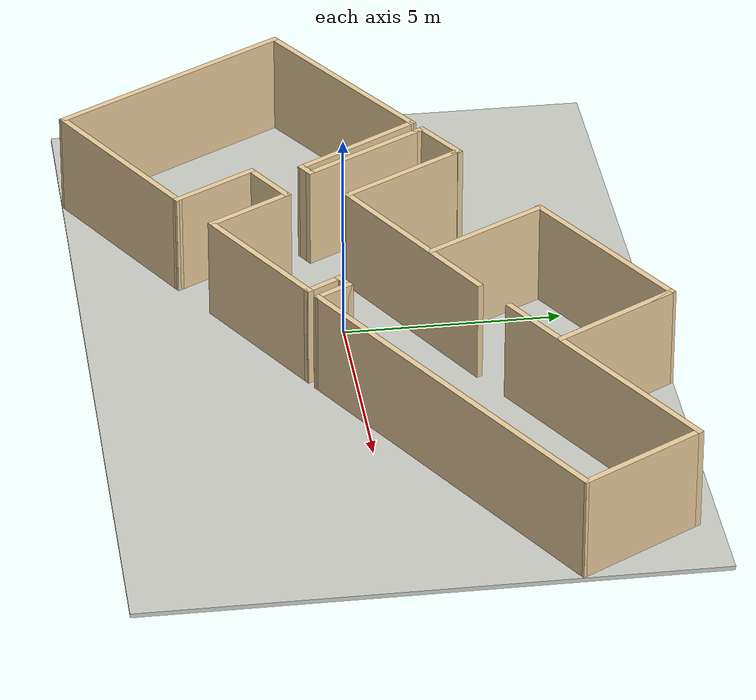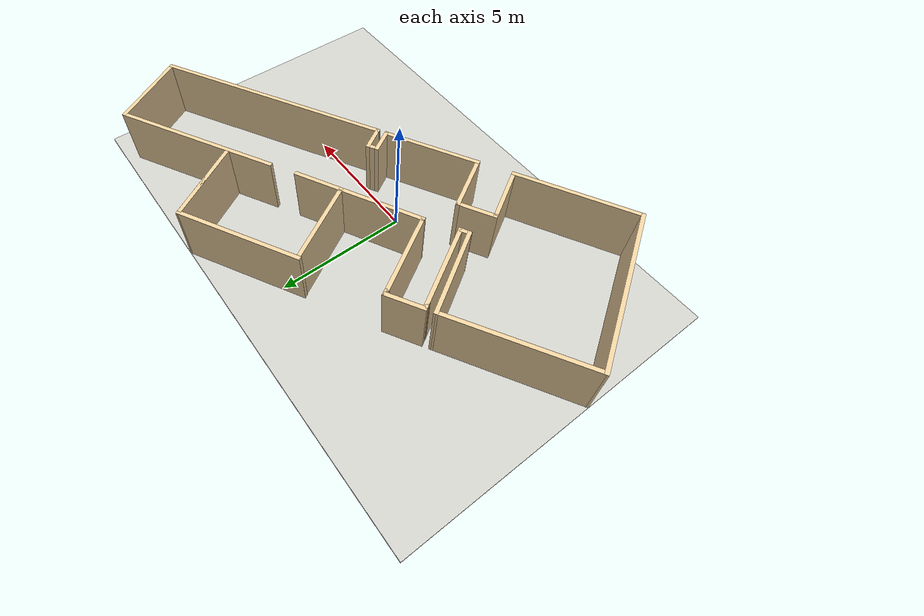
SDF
<?xml version='1.0'?>
<sdf version='1.7'>
  <model name='ignc_lab_new'>
    <pose>0.503554 0.562447 0 0 -0 0</pose>
    <link name='Floor_0'>
      <collision name='Floor_0_Collision'>
        <geometry>
          <box>
            <size>19.9217 12.8917 0.1</size>
          </box>
        </geometry>
        <pose>0 0 0.05 0 -0 0</pose>
      </collision>
      <visual name='Floor_0_Visual'>
        <pose>0 0 0.05 0 -0 0</pose>
        <geometry>
          <box>
            <size>19.9217 12.8917 0.1</size>
          </box>
        </geometry>
        <material>
          <script>
            <uri>file://media/materials/scripts/gazebo.material</uri>
            <name>Gazebo/CeilingTiled</name>
          </script>
          <ambient>1 1 1 1</ambient>
        </material>
        <meta>
          <layer>0</layer>
        </meta>
      </visual>
      <pose>0 -0 0 0 -0 0</pose>
    </link>
    <link name='Wall_100'>
      <collision name='Wall_100_Collision'>
        <geometry>
          <box>
            <size>6.36747 0.15 2.5</size>
          </box>
        </geometry>
        <pose>0 0 1.25 0 -0 0</pose>
      </collision>
      <visual name='Wall_100_Visual'>
        <pose>0 0 1.25 0 -0 0</pose>
        <geometry>
          <box>
            <size>6.36747 0.15 2.5</size>
          </box>
        </geometry>
        <material>
          <script>
            <uri>file://media/materials/scripts/gazebo.material</uri>
            <name>Gazebo/Grey</name>
          </script>
          <ambient>0.921569 0.807843 0.615686 1</ambient>
        </material>
        <meta>
          <layer>0</layer>
        </meta>
      </visual>
      <pose>-8.27025 -3.67023 0 0 -0 -1.03485</pose>
    </link>
    <link name='Wall_101'>
      <collision name='Wall_101_Collision'>
        <geometry>
          <box>
            <size>2.25 0.15 2.5</size>
          </box>
        </geometry>
        <pose>0 0 1.25 0 -0 0</pose>
      </collision>
      <visual name='Wall_101_Visual'>
        <pose>0 0 1.25 0 -0 0</pose>
        <geometry>
          <box>
            <size>2.25 0.15 2.5</size>
          </box>
        </geometry>
        <material>
          <script>
            <uri>file://media/materials/scripts/gazebo.material</uri>
            <name>Gazebo/Grey</name>
          </script>
          <ambient>0.921569 0.807843 0.615686 1</ambient>
        </material>
        <meta>
          <layer>0</layer>
        </meta>
      </visual>
      <pose>-3.23417 -3.17413 0 0 -0 2.0944</pose>
    </link>
    <link name='Wall_102'>
      <collision name='Wall_102_Collision'>
        <geometry>
          <box>
            <size>1.5 0.15 2.5</size>
          </box>
        </geometry>
        <pose>0 0 1.25 0 -0 0</pose>
      </collision>
      <visual name='Wall_102_Visual'>
        <pose>0 0 1.25 0 -0 0</pose>
        <geometry>
          <box>
            <size>1.5 0.15 2.5</size>
          </box>
        </geometry>
        <material>
          <script>
            <uri>file://media/materials/scripts/gazebo.material</uri>
            <name>Gazebo/Grey</name>
          </script>
          <ambient>0.921569 0.807843 0.615686 1</ambient>
        </material>
        <meta>
          <layer>0</layer>
        </meta>
      </visual>
      <pose>-3.17461 -1.9273 0 0 -0 0.523599</pose>
    </link>
    <link name='Wall_103'>
      <collision name='Wall_103_Collision'>
        <geometry>
          <box>
            <size>2.25 0.15 2.5</size>
          </box>
        </geometry>
        <pose>0 0 1.25 0 -0 0</pose>
      </collision>
      <visual name='Wall_103_Visual'>
        <pose>0 0 1.25 0 -0 0</pose>
        <geometry>
          <box>
            <size>2.25 0.15 2.5</size>
          </box>
        </geometry>
        <material>
          <script>
            <uri>file://media/materials/scripts/gazebo.material</uri>
            <name>Gazebo/Grey</name>
          </script>
          <ambient>0.921569 0.807843 0.615686 1</ambient>
        </material>
        <meta>
          <layer>0</layer>
        </meta>
      </visual>
      <pose>-2.06504 -2.49912 0 0 -0 -1.0472</pose>
    </link>
    <link name='Wall_104'>
      <collision name='Wall_104_Collision'>
        <geometry>
          <box>
            <size>4.72113 0.15 2.5</size>
          </box>
        </geometry>
        <pose>0 0 1.25 0 -0 0</pose>
      </collision>
      <visual name='Wall_104_Visual'>
        <pose>0 0 1.25 0 -0 0</pose>
        <geometry>
          <box>
            <size>4.72113 0.15 2.5</size>
          </box>
        </geometry>
        <material>
          <script>
            <uri>file://media/materials/scripts/gazebo.material</uri>
            <name>Gazebo/Grey</name>
          </script>
          <ambient>0.921569 0.807843 0.615686 1</ambient>
        </material>
        <meta>
          <layer>0</layer>
        </meta>
      </visual>
      <pose>-4.69596 -5.21326 0 0 -0 -2.62453</pose>
    </link>
    <link name='Wall_105'>
      <collision name='Wall_105_Collision'>
        <geometry>
          <box>
            <size>3.75 0.15 2.5</size>
          </box>
        </geometry>
        <pose>0 0 1.25 0 -0 0</pose>
      </collision>
      <visual name='Wall_105_Visual'>
        <pose>0 0 1.25 0 -0 0</pose>
        <geometry>
          <box>
            <size>3.75 0.15 2.5</size>
          </box>
        </geometry>
        <material>
          <script>
            <uri>file://media/materials/scripts/gazebo.material</uri>
            <name>Gazebo/Grey</name>
          </script>
          <ambient>0.921569 0.807843 0.615686 1</ambient>
        </material>
        <meta>
          <layer>0</layer>
        </meta>
      </visual>
      <pose>0.018808 -2.50845 0 0 -0 0.523599</pose>
    </link>
    <link name='Wall_106'>
      <collision name='Wall_106_Collision'>
        <geometry>
          <box>
            <size>1 0.15 2.5</size>
          </box>
        </geometry>
        <pose>0 0 1.25 0 -0 0</pose>
      </collision>
      <visual name='Wall_106_Visual'>
        <pose>0 0 1.25 0 -0 0</pose>
        <geometry>
          <box>
            <size>1 0.15 2.5</size>
          </box>
        </geometry>
        <material>
          <script>
            <uri>file://media/materials/scripts/gazebo.material</uri>
            <name>Gazebo/Grey</name>
          </script>
          <ambient>0.921569 0.807843 0.615686 1</ambient>
        </material>
        <meta>
          <layer>0</layer>
        </meta>
      </visual>
      <pose>1.36515 -1.24039 0 0 -0 2.0944</pose>
    </link>
    <link name='Wall_107'>
      <collision name='Wall_107_Collision'>
        <geometry>
          <box>
            <size>0.5 0.15 2.5</size>
          </box>
        </geometry>
        <pose>0 0 1.25 0 -0 0</pose>
      </collision>
      <visual name='Wall_107_Visual'>
        <pose>0 0 1.25 0 -0 0</pose>
        <geometry>
          <box>
            <size>0.5 0.15 2.5</size>
          </box>
        </geometry>
        <material>
          <script>
            <uri>file://media/materials/scripts/gazebo.material</uri>
            <name>Gazebo/Grey</name>
          </script>
          <ambient>0.921569 0.807843 0.615686 1</ambient>
        </material>
        <meta>
          <layer>0</layer>
        </meta>
      </visual>
      <pose>1.30421 -0.78483 0 0 -0 0.523599</pose>
    </link>
    <link name='Wall_108'>
      <collision name='Wall_108_Collision'>
        <geometry>
          <box>
            <size>1 0.15 2.5</size>
          </box>
        </geometry>
        <pose>0 0 1.25 0 -0 0</pose>
      </collision>
      <visual name='Wall_108_Visual'>
        <pose>0 0 1.25 0 -0 0</pose>
        <geometry>
          <box>
            <size>1 0.15 2.5</size>
          </box>
        </geometry>
        <material>
          <script>
            <uri>file://media/materials/scripts/gazebo.material</uri>
            <name>Gazebo/Grey</name>
          </script>
          <ambient>0.921569 0.807843 0.615686 1</ambient>
        </material>
        <meta>
          <layer>0</layer>
        </meta>
      </visual>
      <pose>1.66826 -1.06539 0 0 -0 -1.0472</pose>
    </link>
    <link name='Wall_109'>
      <collision name='Wall_109_Collision'>
        <geometry>
          <box>
            <size>9.37902 0.15 2.5</size>
          </box>
        </geometry>
        <pose>0 0 1.25 0 -0 0</pose>
      </collision>
      <visual name='Wall_109_Visual'>
        <pose>0 0 1.25 0 -0 0</pose>
        <geometry>
          <box>
            <size>9.37902 0.15 2.5</size>
          </box>
        </geometry>
        <material>
          <script>
            <uri>file://media/materials/scripts/gazebo.material</uri>
            <name>Gazebo/Grey</name>
          </script>
          <ambient>0.921569 0.807843 0.615686 1</ambient>
        </material>
        <meta>
          <layer>0</layer>
        </meta>
      </visual>
      <pose>5.86955 0.886735 0 0 -0 0.526838</pose>
    </link>
    <link name='Wall_110'>
      <collision name='Wall_110_Collision'>
        <geometry>
          <box>
            <size>3.25 0.15 2.5</size>
          </box>
        </geometry>
        <pose>0 0 1.25 0 -0 0</pose>
      </collision>
      <visual name='Wall_110_Visual'>
        <pose>0 0 1.25 0 -0 0</pose>
        <geometry>
          <box>
            <size>3.25 0.15 2.5</size>
          </box>
        </geometry>
        <material>
          <script>
            <uri>file://media/materials/scripts/gazebo.material</uri>
            <name>Gazebo/Grey</name>
          </script>
          <ambient>0.921569 0.807843 0.615686 1</ambient>
        </material>
        <meta>
          <layer>0</layer>
        </meta>
      </visual>
      <pose>9.08333 4.54926 0 0 -0 2.0944</pose>
    </link>
    <link name='Wall_111'>
      <collision name='Wall_111_Collision'>
        <geometry>
          <box>
            <size>6.5 0.15 2.5</size>
          </box>
        </geometry>
        <pose>0 0 1.25 0 -0 0</pose>
      </collision>
      <visual name='Wall_111_Visual'>
        <pose>0 0 1.25 0 -0 0</pose>
        <geometry>
          <box>
            <size>6.5 0.15 2.5</size>
          </box>
        </geometry>
        <material>
          <script>
            <uri>file://media/materials/scripts/gazebo.material</uri>
            <name>Gazebo/Grey</name>
          </script>
          <ambient>0.921569 0.807843 0.615686 1</ambient>
        </material>
        <meta>
          <layer>0</layer>
        </meta>
      </visual>
      <pose>5.5587 4.3041 0 0 -0 -2.61799</pose>
    </link>
    <link name='Wall_112'>
      <collision name='Wall_112_Collision'>
        <geometry>
          <box>
            <size>3.22506 0.15 2.5</size>
          </box>
        </geometry>
        <pose>0 0 1.25 0 -0 0</pose>
      </collision>
      <visual name='Wall_112_Visual'>
        <pose>0 0 1.25 0 -0 0</pose>
        <geometry>
          <box>
            <size>3.22506 0.15 2.5</size>
          </box>
        </geometry>
        <material>
          <script>
            <uri>file://media/materials/scripts/gazebo.material</uri>
            <name>Gazebo/Grey</name>
          </script>
          <ambient>0.921569 0.807843 0.615686 1</ambient>
        </material>
        <meta>
          <layer>0</layer>
        </meta>
      </visual>
      <pose>-4.26067 0.40394 0 0 -0 2.09614</pose>
    </link>
    <link name='Wall_113'>
      <collision name='Wall_113_Collision'>
        <geometry>
          <box>
            <size>3.25 0.15 2.5</size>
          </box>
        </geometry>
        <pose>0 0 1.25 0 -0 0</pose>
      </collision>
      <visual name='Wall_113_Visual'>
        <pose>0 0 1.25 0 -0 0</pose>
        <geometry>
          <box>
            <size>3.25 0.15 2.5</size>
          </box>
        </geometry>
        <material>
          <script>
            <uri>file://media/materials/scripts/gazebo.material</uri>
            <name>Gazebo/Grey</name>
          </script>
          <ambient>0.921569 0.807843 0.615686 1</ambient>
        </material>
        <meta>
          <layer>0</layer>
        </meta>
      </visual>
      <pose>-3.16962 1.14562 0 0 -0 -1.0472</pose>
    </link>
    <link name='Wall_114'>
      <collision name='Wall_114_Collision'>
        <geometry>
          <box>
            <size>3.23788 0.15 2.5</size>
          </box>
        </geometry>
        <pose>0 0 1.25 0 -0 0</pose>
      </collision>
      <visual name='Wall_114_Visual'>
        <pose>0 0 1.25 0 -0 0</pose>
        <geometry>
          <box>
            <size>3.23788 0.15 2.5</size>
          </box>
        </geometry>
        <material>
          <script>
            <uri>file://media/materials/scripts/gazebo.material</uri>
            <name>Gazebo/Grey</name>
          </script>
          <ambient>0.921569 0.807843 0.615686 1</ambient>
        </material>
        <meta>
          <layer>0</layer>
        </meta>
      </visual>
      <pose>-0.447934 2.6527 0 0 -0 2.0868</pose>
    </link>
    <link name='Wall_115'>
      <collision name='Wall_115_Collision'>
        <geometry>
          <box>
            <size>3.2314 0.15 2.5</size>
          </box>
        </geometry>
        <pose>0 0 1.25 0 -0 0</pose>
      </collision>
      <visual name='Wall_115_Visual'>
        <pose>0 0 1.25 0 -0 0</pose>
        <geometry>
          <box>
            <size>3.2314 0.15 2.5</size>
          </box>
        </geometry>
        <material>
          <script>
            <uri>file://media/materials/scripts/gazebo.material</uri>
            <name>Gazebo/Grey</name>
          </script>
          <ambient>0.921569 0.807843 0.615686 1</ambient>
        </material>
        <meta>
          <layer>0</layer>
        </meta>
      </visual>
      <pose>3.54357 4.92408 0 0 -0 2.09605</pose>
    </link>
    <link name='Wall_116'>
      <collision name='Wall_116_Collision'>
        <geometry>
          <box>
            <size>0.25 0.15 2.5</size>
          </box>
        </geometry>
        <pose>0 0 1.25 0 -0 0</pose>
      </collision>
      <visual name='Wall_116_Visual'>
        <pose>0 0 1.25 0 -0 0</pose>
        <geometry>
          <box>
            <size>0.25 0.15 2.5</size>
          </box>
        </geometry>
        <material>
          <script>
            <uri>file://media/materials/scripts/gazebo.material</uri>
            <name>Gazebo/Grey</name>
          </script>
          <ambient>0.921569 0.807843 0.615686 1</ambient>
        </material>
        <meta>
          <layer>0</layer>
        </meta>
      </visual>
      <pose>-5.05675 1.77744 0 0 -0 2.0944</pose>
    </link>
    <link name='Wall_117'>
      <collision name='Wall_117_Collision'>
        <geometry>
          <box>
            <size>0.25 0.15 2.5</size>
          </box>
        </geometry>
        <pose>0 0 1.25 0 -0 0</pose>
      </collision>
      <visual name='Wall_117_Visual'>
        <pose>0 0 1.25 0 -0 0</pose>
        <geometry>
          <box>
            <size>0.25 0.15 2.5</size>
          </box>
        </geometry>
        <material>
          <script>
            <uri>file://media/materials/scripts/gazebo.material</uri>
            <name>Gazebo/Grey</name>
          </script>
          <ambient>0.921569 0.807843 0.615686 1</ambient>
        </material>
        <meta>
          <layer>0</layer>
        </meta>
      </visual>
      <pose>-3.96962 2.53126 0 0 -0 2.0944</pose>
    </link>
    <link name='Wall_118'>
      <collision name='Wall_118_Collision'>
        <geometry>
          <box>
            <size>3.32989 0.15 2.5</size>
          </box>
        </geometry>
        <pose>0 0 1.25 0 -0 0</pose>
      </collision>
      <visual name='Wall_118_Visual'>
        <pose>0 0 1.25 0 -0 0</pose>
        <geometry>
          <box>
            <size>3.32989 0.15 2.5</size>
          </box>
        </geometry>
        <material>
          <script>
            <uri>file://media/materials/scripts/gazebo.material</uri>
            <name>Gazebo/Grey</name>
          </script>
          <ambient>0.921569 0.807843 0.615686 1</ambient>
        </material>
        <meta>
          <layer>0</layer>
        </meta>
      </visual>
      <pose>3.5198 4.96723 0 0 -0 2.09538</pose>
    </link>
    <link name='Wall_119'>
      <collision name='Wall_119_Collision'>
        <geometry>
          <box>
            <size>4.75 0.15 2.5</size>
          </box>
        </geometry>
        <pose>0 0 1.25 0 -0 0</pose>
      </collision>
      <visual name='Wall_119_Visual'>
        <pose>0 0 1.25 0 -0 0</pose>
        <geometry>
          <box>
            <size>4.75 0.15 2.5</size>
          </box>
        </geometry>
        <material>
          <script>
            <uri>file://media/materials/scripts/gazebo.material</uri>
            <name>Gazebo/Grey</name>
          </script>
          <ambient>0.921569 0.807843 0.615686 1</ambient>
        </material>
        <meta>
          <layer>0</layer>
        </meta>
      </visual>
      <pose>0.731622 5.19338 0 0 -0 -2.61799</pose>
    </link>
    <link name='Wall_120'>
      <collision name='Wall_120_Collision'>
        <geometry>
          <box>
            <size>1.47985 0.15 2.5</size>
          </box>
        </geometry>
        <pose>0 0 1.25 0 -0 0</pose>
      </collision>
      <visual name='Wall_120_Visual'>
        <pose>0 0 1.25 0 -0 0</pose>
        <geometry>
          <box>
            <size>1.47985 0.15 2.5</size>
          </box>
        </geometry>
        <material>
          <script>
            <uri>file://media/materials/scripts/gazebo.material</uri>
            <name>Gazebo/Grey</name>
          </script>
          <ambient>0.921569 0.807843 0.615686 1</ambient>
        </material>
        <meta>
          <layer>0</layer>
        </meta>
      </visual>
      <pose>-4.56058 2.24455 0 0 -0 -2.59639</pose>
    </link>
    <link name='Wall_121'>
      <collision name='Wall_121_Collision'>
        <geometry>
          <box>
            <size>3.40241 0.15 2.5</size>
          </box>
        </geometry>
        <pose>0 0 1.25 0 -0 0</pose>
      </collision>
      <visual name='Wall_121_Visual'>
        <pose>0 0 1.25 0 -0 0</pose>
        <geometry>
          <box>
            <size>3.40241 0.15 2.5</size>
          </box>
        </geometry>
        <material>
          <script>
            <uri>file://media/materials/scripts/gazebo.material</uri>
            <name>Gazebo/Grey</name>
          </script>
          <ambient>0.921569 0.807843 0.615686 1</ambient>
        </material>
        <meta>
          <layer>0</layer>
        </meta>
      </visual>
      <pose>-4.6052 0.311211 0 0 -0 -1.03099</pose>
    </link>
    <link name='Wall_122'>
      <collision name='Wall_122_Collision'>
        <geometry>
          <box>
            <size>0.469267 0.15 2.5</size>
          </box>
        </geometry>
        <pose>0 0 1.25 0 -0 0</pose>
      </collision>
      <visual name='Wall_122_Visual'>
        <pose>0 0 1.25 0 -0 0</pose>
        <geometry>
          <box>
            <size>0.469267 0.15 2.5</size>
          </box>
        </geometry>
        <material>
          <script>
            <uri>file://media/materials/scripts/gazebo.material</uri>
            <name>Gazebo/Grey</name>
          </script>
          <ambient>0.921569 0.807843 0.615686 1</ambient>
        </material>
        <meta>
          <layer>0</layer>
        </meta>
      </visual>
      <pose>-3.63133 -1.0036 0 0 -0 0.526115</pose>
    </link>
    <link name='Wall_123'>
      <collision name='Wall_123_Collision'>
        <geometry>
          <box>
            <size>5.00745 0.15 2.5</size>
          </box>
        </geometry>
        <pose>0 0 1.25 0 -0 0</pose>
      </collision>
      <visual name='Wall_123_Visual'>
        <pose>0 0 1.25 0 -0 0</pose>
        <geometry>
          <box>
            <size>5.00745 0.15 2.5</size>
          </box>
        </geometry>
        <material>
          <script>
            <uri>file://media/materials/scripts/gazebo.material</uri>
            <name>Gazebo/Grey</name>
          </script>
          <ambient>0.921569 0.807843 0.615686 1</ambient>
        </material>
        <meta>
          <layer>0</layer>
        </meta>
      </visual>
      <pose>-0.271376 0.982489 0 0 -0 0.506963</pose>
    </link>
    <link name='Wall_99'>
      <collision name='Wall_99_Collision'>
        <geometry>
          <box>
            <size>5.3285 0.15 2.5</size>
          </box>
        </geometry>
        <pose>0 0 1.25 0 -0 0</pose>
      </collision>
      <visual name='Wall_99_Visual'>
        <pose>0 0 1.25 0 -0 0</pose>
        <geometry>
          <box>
            <size>5.3285 0.15 2.5</size>
          </box>
        </geometry>
        <material>
          <script>
            <uri>file://media/materials/scripts/gazebo.material</uri>
            <name>Gazebo/Grey</name>
          </script>
          <ambient>0.921569 0.807843 0.615686 1</ambient>
        </material>
        <meta>
          <layer>0</layer>
        </meta>
      </visual>
      <pose>-7.64939 0.354396 0 0 -0 -2.59231</pose>
    </link>
    <static>1</static>
  </model>
</sdf>
